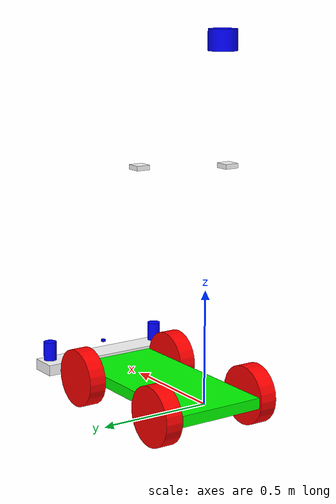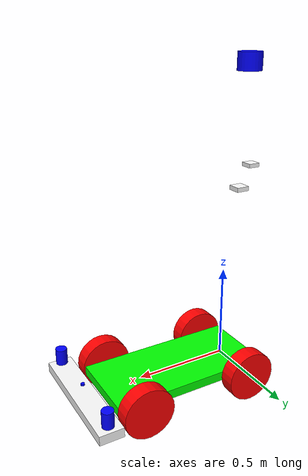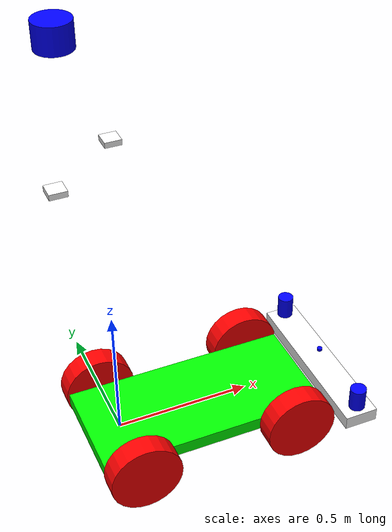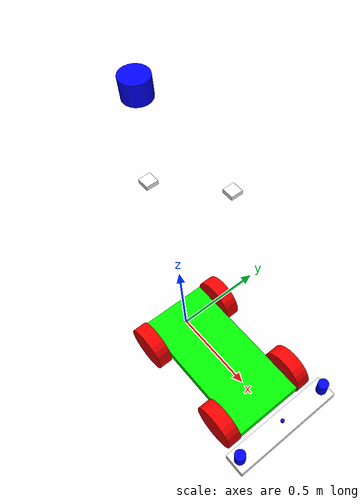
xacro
<?xml version="1.0"?>
<robot name="dtw_robot" xmlns:xacro="http://ros.org/wiki/xacro">
  <material name="gray">
    <color rgba="0.5 0.5 0.5 1.0" />
  </material>
  <material name="red">
    <color rgba="1.0 0.0 0.0 1.0" />
  </material>
  <material name="green">
    <color rgba="0.0 1.0 0.0 1.0" />
  </material>
  <material name="blue">
    <color rgba="0.0 0.0 1.0 1.0" />
  </material>
  <material name="black">
    <color rgba="1.0 1.0 1.0 1.0" />
  </material>

  <!-- Rear wheel macro -->
<xacro:macro name="rear_wheel_macro" params="parent prefix xyz">
    <link name="rear_${prefix}_link">
      <collision>
        <geometry>
          <cylinder radius="0.1325" length="0.08" />
        </geometry>
      </collision>
      <visual>
        <geometry>
          <cylinder length="0.08" radius="0.1325" />
        </geometry>
        <material name="red" />
      </visual>
      <inertial>
        <origin xyz="0 0 0" rpy="0 0 0" />
        <mass value="1.0" />
        <inertia ixx="1.0" ixy="0.0" ixz="0.0"
          iyy="1.0" iyz="0.0"
          izz="1.0" />
      </inertial>
    </link>
    <joint name="rear_${prefix}_joint" type="fixed">
      <parent link="${parent}" />
      <child link="rear_${prefix}_link" />
      <origin xyz="${xyz}" rpy="${radians(90)} 0 0" />
      <axis xyz="0 0 1" />
    </joint>
    <gazebo reference="rear_${prefix}_link">
      <material>Gazebo/Black</material>
      <mu1 value="0.01" />
      <mu2 value="0.01" />
    </gazebo>
  </xacro:macro>

  <!-- Front wheel macro -->
  <xacro:macro name="front_wheel_macro" params="parent prefix xyz">
    <link name="front_${prefix}_link">
      <collision>
        <geometry>
          <cylinder radius="0.1325" length="0.08" />
        </geometry>
      </collision>
      <visual>
        <geometry>
          <cylinder length="0.08" radius="0.1325" />
        </geometry>
        <material name="red" />
      </visual>
      <inertial>
        <origin xyz="0 0 0" rpy="0 0 0" />
        <mass value="1.0" />
        <inertia ixx="1.0" ixy="0.0" ixz="0.0"
          iyy="1.0" iyz="0.0"
          izz="1.0" />
      </inertial>
    </link>
    <joint name="front_${prefix}_joint" type="fixed">
      <parent link="${parent}" />
      <child link="front_${prefix}_link" />
      <origin xyz="${xyz}" rpy="${radians(90)} 0 0" />
      <axis xyz="0 0 1" />
    </joint>
    <gazebo reference="front_${prefix}_link">
      <material>Gazebo/Black</material>
      <mu1 value="0.01" />
      <mu2 value="0.01" />
    </gazebo>
  </xacro:macro>

  <link name="base_link" />
  <joint name="base_body_joint" type="fixed">
    <parent link="base_link" />
    <child link="base_floor" />
    <origin xyz="0.3 0 0.0" rpy="0 0 0" />
  </joint>

  <link name="base_floor">
    <inertial>
      <origin xyz="0 0 0" rpy="0 0 0" />
      <mass value="1.0" />
      <inertia ixx="0.001" ixy="0.0" ixz="0.0" iyy="0.001" iyz="0.0" izz="0.001" />
    </inertial>
    <visual>
      <origin xyz="0 0 0" rpy="0 0 0" />
      <geometry>
        <box size="0.85 0.4 0.050" />
      </geometry>
      <material name="green" />
    </visual>
    <collision>
      <origin xyz="0 0 0" rpy="0 0 0" />
      <geometry>
        <box size="0.85 0.4 0.050" />
      </geometry>
    </collision>
  </link>

   <!-- tim_frame-->
   <joint name="tim_frame_joint" type="fixed">
     <parent link="base_link" />
     <child link="tim_frame" />
     <origin xyz="0.82 0 0.0" rpy="0 0 0" />
   </joint>
   <link name="tim_frame">
     <inertial>
       <origin xyz="0 0 0" rpy="0 0 0" />
       <mass value="1.0" />
       <inertia ixx="0.001" ixy="0.0" ixz="0.0" iyy="0.001" iyz="0.0" izz="0.001" />
     </inertial>
     <visual>
       <origin xyz="0 0 0" rpy="0 0 0" />
       <geometry>
         <box size="0.125 0.66 0.050" />
       </geometry>
       <material name="black" />
     </visual>
     <collision>
       <origin xyz="0 0 0" rpy="0 0 0" />
       <geometry>
         <box size="0.10 0.66 0.050" />
       </geometry>
     </collision>
   </link>

  <xacro:rear_wheel_macro prefix="left_wheel" parent="base_floor" xyz="-0.3 0.245 0" />
  <xacro:rear_wheel_macro prefix="right_wheel" parent="base_floor" xyz="-0.3 -0.245 0" />
  <xacro:front_wheel_macro prefix="left_wheel" parent="base_floor" xyz="0.3 -0.245 0" />
  <xacro:front_wheel_macro prefix="right_wheel" parent="base_floor" xyz="0.3 0.245 0" />

  <!-- Tim_R %%%%%%%%%%%%%%%%%%%%%%%%%%%%%%%%%%%%%%%%%%-->
  <joint name="tim_joint_R" type="fixed">
    <parent link="base_link" />
    <child link="tim_link_R" />
    <origin xyz="0.82 0.29 0.075" rpy="0 0 0.84806208" /> <!--ベースリンクからの距離 -->
  </joint>
  <link name="tim_link_R">
    <visual>
      <geometry>
        <cylinder radius="0.030" length="0.086" />
      </geometry>
      <origin xyz="0 0 0" rpy="0 0 0" />
      <material name="blue" />
    </visual>
    <collision>
      <geometry>
        <cylinder radius="0.030" length="0.086" />
      </geometry>
      <origin xyz="0 0 0" rpy="0 0 0" />
    </collision>
    <inertial>
      <origin xyz="0 0 0" rpy="0 0 0" />
      <mass value="0.25" />
      <inertia ixx="0.00021033333"
        ixy="0" ixz="0"
        iyx="0" iyy="0.00021033333"
        iyz="0"
        izx="0" izy="0" izz="0.0001125" />
    </inertial>
  </link>

<!-- Tim_L %%%%%%%%%%%%%%%%%%%%%%%%%%%%%%%%%%%%%%%%%%-->
  <joint name="tim_joint_L" type="fixed">
    <parent link="base_link" />
    <child link="tim_link_L" />
    <origin xyz="0.82 -0.29 0.075" rpy="0 0 -0.84806208" />
  </joint>
  <link name="tim_link_L">
    <visual>
      <geometry>
        <cylinder radius="0.030" length="0.086" />
      </geometry>
      <origin xyz="0 0 0" rpy="0 0 0" />
      <material name="blue" />
    </visual>
    <collision>
      <geometry>
        <cylinder radius="0.030" length="0.086" />
      </geometry>
      <origin xyz="0 0 0" rpy="0 0 0" />
    </collision>
    <inertial>
      <origin xyz="0 0 0" rpy="0 0 0" />
      <mass value="0.25" />
      <inertia ixx="0.00021033333"
        ixy="0" ixz="0"
        iyx="0" iyy="0.00021033333"
        iyz="0"
        izx="0" izy="0" izz="0.0001125" />
    </inertial>
  </link>

  <!-- laser %%%%%%%%%%%%%%%%%%%%%%%%%%%%%%%%%%%%%%%%%%-->
  <joint name="laser_joint" type="fixed">
    <parent link="base_link" />
    <child link="laser_link" />
    <origin xyz="0.82 0 0.075" rpy="0 0 0" /> <!--ベースリンクからの距離 -->
  </joint>
  <link name="laser_link">
    <visual>
      <geometry>
        <cylinder radius="0.01" length="0.01" />
      </geometry>
      <origin xyz="0 0 0" rpy="0 0 0" />
      <material name="blue" />
    </visual>
    <collision>
      <geometry>
        <cylinder radius="0.01" length="0.01" />
      </geometry>
      <origin xyz="0 0 0" rpy="0 0 0" />
    </collision>
    <inertial>
      <origin xyz="0 0 0" rpy="0 0 0" />
      <mass value="0.25" />
      <inertia ixx="0.00021033333"
        ixy="0" ixz="0"
        iyx="0" iyy="0.00021033333"
        iyz="0"
        izx="0" izy="0" izz="0.0001125" />
    </inertial>
  </link>

  <!-- multiscan %%%%%%%%%%%%%%%%%%%%%%%%%%%%%%%%%%%%%%%%%%-->
  <joint name="multiscan_joint" type="fixed">
    <parent link="base_link" />
    <child link="multiscan_link" />
    <origin xyz="-0.10 0 1.545" rpy="0 0 0" />
  </joint>
  <link name="multiscan_link">
    <visual>
      <geometry>
        <cylinder radius="0.060" length="0.086" />
      </geometry>
      <origin xyz="0 0 0" rpy="0 0 0" />
      <material name="blue" />
    </visual>
    <collision>
      <geometry>
        <cylinder radius="0.060" length="0.086" />
      </geometry>
      <origin xyz="0 0 0" rpy="0 0 0" />
    </collision>
    <inertial>
      <origin xyz="0 0 0" rpy="0 0 0" />
      <mass value="0.25" />
      <inertia ixx="0.00021033333"
        ixy="0" ixz="0"
        iyx="0" iyy="0.00021033333"
        iyz="0"
        izx="0" izy="0" izz="0.0001125" />
    </inertial>
  </link>

  <!-- imu %%%%%%%%%%%%%%%%%%%%%%%%%%%%%%%%%%%%%%%%%%-->
  <joint name="imu_joint" type="fixed">
    <parent link="base_link" />
    <child link="imu_link" />
    <origin xyz="-0.14 0 1.05" rpy="0 0 0" />
  </joint>
  <link name="imu_link">
    <inertial>
      <origin xyz="0 0 0" rpy="0 0 0" />
      <mass value="1.0" />
      <inertia ixx="0.001" ixy="0.0" ixz="0.0" iyy="0.001" iyz="0.0" izz="0.001" />
    </inertial>
    <visual>
      <origin xyz="0 0 0" rpy="0 0 0" />
      <geometry>
        <box size="0.06 0.06 0.020" />
      </geometry>
      <material name="black" />
    </visual>
    <collision>
      <origin xyz="0 0 0" rpy="0 0 0" />
      <geometry>
        <box size="0.10 0.66 0.050" />
      </geometry>
    </collision>
  </link>

<!-- gps %%%%%%%%%%%%%%%%%%%%%%%%%%%%%%%%%%%%%%%%%%-->
<joint name="gps_joint" type="fixed">
  <parent link="base_link" />
  <child link="gps_link" />
  <origin xyz="0.12 0.25 1.03" rpy="0 0 0" />
</joint>
<link name="gps_link">
  <inertial>
    <origin xyz="0 0 0" rpy="0 0 0" />
    <mass value="1.0" />
    <inertia ixx="0.001" ixy="0.0" ixz="0.0" iyy="0.001" iyz="0.0" izz="0.001" />
  </inertial>
  <visual>
    <origin xyz="0 0 0" rpy="0 0 0" />
    <geometry>
      <box size="0.06 0.06 0.020" />
    </geometry>
    <material name="black" />
  </visual>
  <collision>
    <origin xyz="0 0 0" rpy="0 0 0" />
    <geometry>
      <box size="0.10 0.66 0.050" />
    </geometry>
  </collision>
</link>
</robot>
